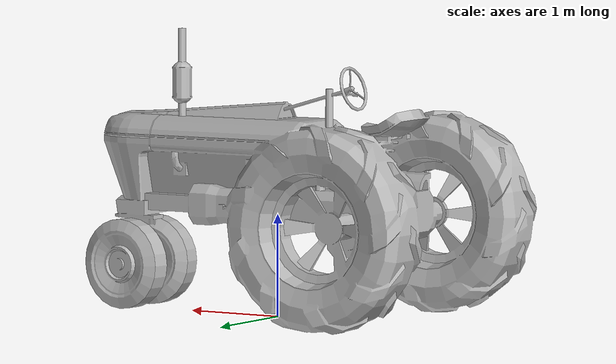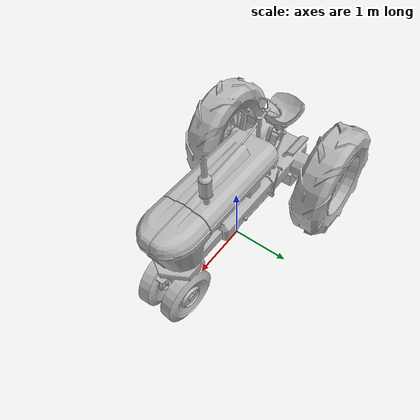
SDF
<sdf version="1.7">
  <model name="tractor_old">
    <static>true</static>
    <link name="tractor_old_link">
      <collision name="tractor_old_collision">
        <geometry>
          <mesh>
            <uri>model://tractor_old/tractor_old.dae</uri>
            <scale>1 1 1</scale>
          </mesh>
        </geometry>
      </collision>
      <visual name="tractor_old_visual">
        <geometry>
          <mesh>
            <uri>model://tractor_old/tractor_old.dae</uri>
            <scale>1 1 1</scale>
          </mesh>
        </geometry>
      </visual>
    </link>
  </model>
</sdf>
